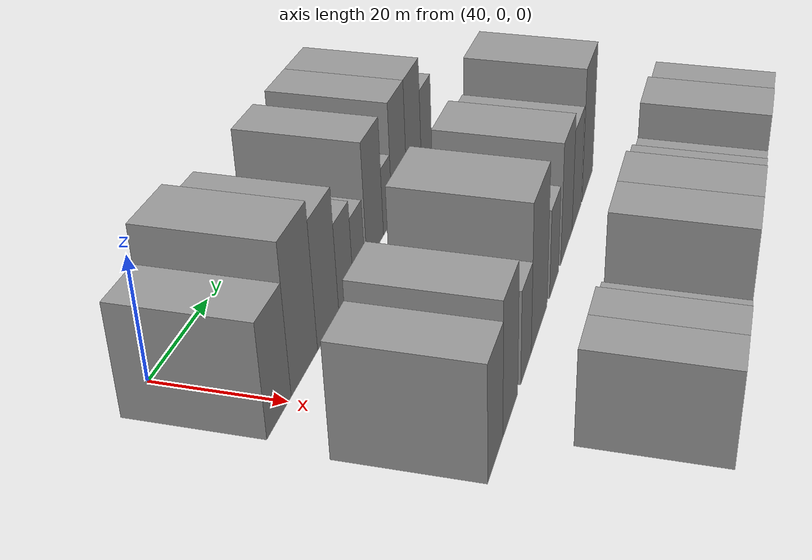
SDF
<sdf version="1.6">
 <world name="default">
  <model name="building_42">
   <static>1</static>
   <pose>50.0000 -3.3659 0 0.000000 0.000000 0.000000</pose>
   <link name="link">
    <pose>0 0 9.00 0 0 0</pose>
    <collision name="collision"><geometry><box><size>20.0000 8.8512 18.0000</size></box></geometry></collision>
    <visual name="visual">
     <cast_shadows>0</cast_shadows>
     <geometry><box><size>20.0000 8.8512 18.0000</size></box></geometry>
     <material>
      <script>
       <uri>model://grey_wall/materials/scripts</uri>
       <uri>model://grey_wall/materials/textures</uri>
       <name>vrc/grey_wall</name>
      </script>
     </material>
    </visual>
   </link>
  </model>
  <model name="building_43">
   <static>1</static>
   <pose>50.0000 6.2937 0 0.000000 0.000000 0.000000</pose>
   <link name="link">
    <pose>0 0 12.00 0 0 0</pose>
    <collision name="collision"><geometry><box><size>20.0000 10.4679 24.0000</size></box></geometry></collision>
    <visual name="visual">
     <cast_shadows>0</cast_shadows>
     <geometry><box><size>20.0000 10.4679 24.0000</size></box></geometry>
     <material>
      <script>
       <uri>model://grey_wall/materials/scripts</uri>
       <uri>model://grey_wall/materials/textures</uri>
       <name>vrc/grey_wall</name>
      </script>
     </material>
    </visual>
   </link>
  </model>
  <model name="building_44">
   <static>1</static>
   <pose>50.0000 16.1524 0 0.000000 0.000000 0.000000</pose>
   <link name="link">
    <pose>0 0 10.50 0 0 0</pose>
    <collision name="collision"><geometry><box><size>20.0000 9.2495 21.0000</size></box></geometry></collision>
    <visual name="visual">
     <cast_shadows>0</cast_shadows>
     <geometry><box><size>20.0000 9.2495 21.0000</size></box></geometry>
     <material>
      <script>
       <uri>model://grey_wall/materials/scripts</uri>
       <uri>model://grey_wall/materials/textures</uri>
       <name>vrc/grey_wall</name>
      </script>
     </material>
    </visual>
   </link>
  </model>
  <model name="building_45">
   <static>1</static>
   <pose>50.0000 24.1634 0 0.000000 0.000000 0.000000</pose>
   <link name="link">
    <pose>0 0 7.50 0 0 0</pose>
    <collision name="collision"><geometry><box><size>20.0000 6.7723 15.0000</size></box></geometry></collision>
    <visual name="visual">
     <cast_shadows>0</cast_shadows>
     <geometry><box><size>20.0000 6.7723 15.0000</size></box></geometry>
     <material>
      <script>
       <uri>model://grey_wall/materials/scripts</uri>
       <uri>model://grey_wall/materials/textures</uri>
       <name>vrc/grey_wall</name>
      </script>
     </material>
    </visual>
   </link>
  </model>
  <model name="building_46">
   <static>1</static>
   <pose>50.0000 30.4063 0 0.000000 0.000000 0.000000</pose>
   <link name="link">
    <pose>0 0 6.00 0 0 0</pose>
    <collision name="collision"><geometry><box><size>20.0000 5.7136 12.0000</size></box></geometry></collision>
    <visual name="visual">
     <cast_shadows>0</cast_shadows>
     <geometry><box><size>20.0000 5.7136 12.0000</size></box></geometry>
     <material>
      <script>
       <uri>model://grey_wall/materials/scripts</uri>
       <uri>model://grey_wall/materials/textures</uri>
       <name>vrc/grey_wall</name>
      </script>
     </material>
    </visual>
   </link>
  </model>
  <model name="building_47">
   <static>1</static>
   <pose>50.0000 38.6431 0 0.000000 0.000000 0.000000</pose>
   <link name="link">
    <pose>0 0 10.50 0 0 0</pose>
    <collision name="collision"><geometry><box><size>20.0000 8.7599 21.0000</size></box></geometry></collision>
    <visual name="visual">
     <cast_shadows>0</cast_shadows>
     <geometry><box><size>20.0000 8.7599 21.0000</size></box></geometry>
     <material>
      <script>
       <uri>model://grey_wall/materials/scripts</uri>
       <uri>model://grey_wall/materials/textures</uri>
       <name>vrc/grey_wall</name>
      </script>
     </material>
    </visual>
   </link>
  </model>
  <model name="building_48">
   <static>1</static>
   <pose>50.0000 45.4695 0 0.000000 0.000000 0.000000</pose>
   <link name="link">
    <pose>0 0 6.00 0 0 0</pose>
    <collision name="collision"><geometry><box><size>20.0000 4.8929 12.0000</size></box></geometry></collision>
    <visual name="visual">
     <cast_shadows>0</cast_shadows>
     <geometry><box><size>20.0000 4.8929 12.0000</size></box></geometry>
     <material>
      <script>
       <uri>model://grey_wall/materials/scripts</uri>
       <uri>model://grey_wall/materials/textures</uri>
       <name>vrc/grey_wall</name>
      </script>
     </material>
    </visual>
   </link>
  </model>
  <model name="building_49">
   <static>1</static>
   <pose>50.0000 52.2723 0 0.000000 0.000000 0.000000</pose>
   <link name="link">
    <pose>0 0 10.50 0 0 0</pose>
    <collision name="collision"><geometry><box><size>20.0000 8.7125 21.0000</size></box></geometry></collision>
    <visual name="visual">
     <cast_shadows>0</cast_shadows>
     <geometry><box><size>20.0000 8.7125 21.0000</size></box></geometry>
     <material>
      <script>
       <uri>model://grey_wall/materials/scripts</uri>
       <uri>model://grey_wall/materials/textures</uri>
       <name>vrc/grey_wall</name>
      </script>
     </material>
    </visual>
   </link>
  </model>
  <model name="building_50">
   <static>1</static>
   <pose>50.0000 61.1767 0 0.000000 0.000000 0.000000</pose>
   <link name="link">
    <pose>0 0 10.50 0 0 0</pose>
    <collision name="collision"><geometry><box><size>20.0000 9.0963 21.0000</size></box></geometry></collision>
    <visual name="visual">
     <cast_shadows>0</cast_shadows>
     <geometry><box><size>20.0000 9.0963 21.0000</size></box></geometry>
     <material>
      <script>
       <uri>model://grey_wall/materials/scripts</uri>
       <uri>model://grey_wall/materials/textures</uri>
       <name>vrc/grey_wall</name>
      </script>
     </material>
    </visual>
   </link>
  </model>
  <model name="building_51">
   <static>1</static>
   <pose>50.0000 69.1998 0 0.000000 0.000000 0.000000</pose>
   <link name="link">
    <pose>0 0 7.50 0 0 0</pose>
    <collision name="collision"><geometry><box><size>20.0000 6.9499 15.0000</size></box></geometry></collision>
    <visual name="visual">
     <cast_shadows>0</cast_shadows>
     <geometry><box><size>20.0000 6.9499 15.0000</size></box></geometry>
     <material>
      <script>
       <uri>model://grey_wall/materials/scripts</uri>
       <uri>model://grey_wall/materials/textures</uri>
       <name>vrc/grey_wall</name>
      </script>
     </material>
    </visual>
   </link>
  </model>
  <model name="building_118">
   <static>1</static>
   <pose>79.0000 -5.2491 0 0.000000 0.000000 0.000000</pose>
   <link name="link">
    <pose>0 0 9.00 0 0 0</pose>
    <collision name="collision"><geometry><box><size>20.0000 8.6545 18.0000</size></box></geometry></collision>
    <visual name="visual">
     <cast_shadows>0</cast_shadows>
     <geometry><box><size>20.0000 8.6545 18.0000</size></box></geometry>
     <material>
      <script>
       <uri>model://grey_wall/materials/scripts</uri>
       <uri>model://grey_wall/materials/textures</uri>
       <name>vrc/grey_wall</name>
      </script>
     </material>
    </visual>
   </link>
  </model>
  <model name="building_119">
   <static>1</static>
   <pose>79.0000 3.6770 0 0.000000 0.000000 0.000000</pose>
   <link name="link">
    <pose>0 0 10.50 0 0 0</pose>
    <collision name="collision"><geometry><box><size>20.0000 9.1977 21.0000</size></box></geometry></collision>
    <visual name="visual">
     <cast_shadows>0</cast_shadows>
     <geometry><box><size>20.0000 9.1977 21.0000</size></box></geometry>
     <material>
      <script>
       <uri>model://grey_wall/materials/scripts</uri>
       <uri>model://grey_wall/materials/textures</uri>
       <name>vrc/grey_wall</name>
      </script>
     </material>
    </visual>
   </link>
  </model>
  <model name="building_120">
   <static>1</static>
   <pose>79.0000 13.8615 0 0.000000 0.000000 0.000000</pose>
   <link name="link">
    <pose>0 0 7.50 0 0 0</pose>
    <collision name="collision"><geometry><box><size>20.0000 7.1713 15.0000</size></box></geometry></collision>
    <visual name="visual">
     <cast_shadows>0</cast_shadows>
     <geometry><box><size>20.0000 7.1713 15.0000</size></box></geometry>
     <material>
      <script>
       <uri>model://grey_wall/materials/scripts</uri>
       <uri>model://grey_wall/materials/textures</uri>
       <name>vrc/grey_wall</name>
      </script>
     </material>
    </visual>
   </link>
  </model>
  <model name="building_121">
   <static>1</static>
   <pose>79.0000 23.3644 0 0.000000 0.000000 0.000000</pose>
   <link name="link">
    <pose>0 0 12.00 0 0 0</pose>
    <collision name="collision"><geometry><box><size>20.0000 11.8346 24.0000</size></box></geometry></collision>
    <visual name="visual">
     <cast_shadows>0</cast_shadows>
     <geometry><box><size>20.0000 11.8346 24.0000</size></box></geometry>
     <material>
      <script>
       <uri>model://grey_wall/materials/scripts</uri>
       <uri>model://grey_wall/materials/textures</uri>
       <name>vrc/grey_wall</name>
      </script>
     </material>
    </visual>
   </link>
  </model>
  <model name="building_122">
   <static>1</static>
   <pose>79.0000 34.9454 0 0.000000 0.000000 0.000000</pose>
   <link name="link">
    <pose>0 0 7.50 0 0 0</pose>
    <collision name="collision"><geometry><box><size>20.0000 7.3276 15.0000</size></box></geometry></collision>
    <visual name="visual">
     <cast_shadows>0</cast_shadows>
     <geometry><box><size>20.0000 7.3276 15.0000</size></box></geometry>
     <material>
      <script>
       <uri>model://grey_wall/materials/scripts</uri>
       <uri>model://grey_wall/materials/textures</uri>
       <name>vrc/grey_wall</name>
      </script>
     </material>
    </visual>
   </link>
  </model>
  <model name="building_123">
   <static>1</static>
   <pose>79.0000 45.7378 0 0.000000 0.000000 0.000000</pose>
   <link name="link">
    <pose>0 0 10.50 0 0 0</pose>
    <collision name="collision"><geometry><box><size>20.0000 10.2572 21.0000</size></box></geometry></collision>
    <visual name="visual">
     <cast_shadows>0</cast_shadows>
     <geometry><box><size>20.0000 10.2572 21.0000</size></box></geometry>
     <material>
      <script>
       <uri>model://grey_wall/materials/scripts</uri>
       <uri>model://grey_wall/materials/textures</uri>
       <name>vrc/grey_wall</name>
      </script>
     </material>
    </visual>
   </link>
  </model>
  <model name="building_124">
   <static>1</static>
   <pose>79.0000 55.2541 0 0.000000 0.000000 0.000000</pose>
   <link name="link">
    <pose>0 0 9.00 0 0 0</pose>
    <collision name="collision"><geometry><box><size>20.0000 8.7753 18.0000</size></box></geometry></collision>
    <visual name="visual">
     <cast_shadows>0</cast_shadows>
     <geometry><box><size>20.0000 8.7753 18.0000</size></box></geometry>
     <material>
      <script>
       <uri>model://grey_wall/materials/scripts</uri>
       <uri>model://grey_wall/materials/textures</uri>
       <name>vrc/grey_wall</name>
      </script>
     </material>
    </visual>
   </link>
  </model>
  <model name="building_125">
   <static>1</static>
   <pose>79.0000 66.2986 0 0.000000 0.000000 0.000000</pose>
   <link name="link">
    <pose>0 0 12.00 0 0 0</pose>
    <collision name="collision"><geometry><box><size>20.0000 11.3137 24.0000</size></box></geometry></collision>
    <visual name="visual">
     <cast_shadows>0</cast_shadows>
     <geometry><box><size>20.0000 11.3137 24.0000</size></box></geometry>
     <material>
      <script>
       <uri>model://grey_wall/materials/scripts</uri>
       <uri>model://grey_wall/materials/textures</uri>
       <name>vrc/grey_wall</name>
      </script>
     </material>
    </visual>
   </link>
  </model>
  <model name="building_193">
   <static>1</static>
   <pose>108.0000 3.3655 0 0.000000 0.000000 0.000000</pose>
   <link name="link">
    <pose>0 0 7.50 0 0 0</pose>
    <collision name="collision"><geometry><box><size>20.0000 7.4467 15.0000</size></box></geometry></collision>
    <visual name="visual">
     <cast_shadows>0</cast_shadows>
     <geometry><box><size>20.0000 7.4467 15.0000</size></box></geometry>
     <material>
      <script>
       <uri>model://grey_wall/materials/scripts</uri>
       <uri>model://grey_wall/materials/textures</uri>
       <name>vrc/grey_wall</name>
      </script>
     </material>
    </visual>
   </link>
  </model>
  <model name="building_194">
   <static>1</static>
   <pose>108.0000 10.3203 0 0.000000 0.000000 0.000000</pose>
   <link name="link">
    <pose>0 0 7.50 0 0 0</pose>
    <collision name="collision"><geometry><box><size>20.0000 6.4629 15.0000</size></box></geometry></collision>
    <visual name="visual">
     <cast_shadows>0</cast_shadows>
     <geometry><box><size>20.0000 6.4629 15.0000</size></box></geometry>
     <material>
      <script>
       <uri>model://grey_wall/materials/scripts</uri>
       <uri>model://grey_wall/materials/textures</uri>
       <name>vrc/grey_wall</name>
      </script>
     </material>
    </visual>
   </link>
  </model>
  <model name="building_195">
   <static>1</static>
   <pose>108.0000 16.4567 0 0.000000 0.000000 0.000000</pose>
   <link name="link">
    <pose>0 0 6.00 0 0 0</pose>
    <collision name="collision"><geometry><box><size>20.0000 5.8099 12.0000</size></box></geometry></collision>
    <visual name="visual">
     <cast_shadows>0</cast_shadows>
     <geometry><box><size>20.0000 5.8099 12.0000</size></box></geometry>
     <material>
      <script>
       <uri>model://grey_wall/materials/scripts</uri>
       <uri>model://grey_wall/materials/textures</uri>
       <name>vrc/grey_wall</name>
      </script>
     </material>
    </visual>
   </link>
  </model>
  <model name="building_196">
   <static>1</static>
   <pose>108.0000 26.7716 0 0.000000 0.000000 0.000000</pose>
   <link name="link">
    <pose>0 0 10.50 0 0 0</pose>
    <collision name="collision"><geometry><box><size>20.0000 8.8200 21.0000</size></box></geometry></collision>
    <visual name="visual">
     <cast_shadows>0</cast_shadows>
     <geometry><box><size>20.0000 8.8200 21.0000</size></box></geometry>
     <material>
      <script>
       <uri>model://grey_wall/materials/scripts</uri>
       <uri>model://grey_wall/materials/textures</uri>
       <name>vrc/grey_wall</name>
      </script>
     </material>
    </visual>
   </link>
  </model>
  <model name="building_197">
   <static>1</static>
   <pose>108.0000 35.7406 0 0.000000 0.000000 0.000000</pose>
   <link name="link">
    <pose>0 0 10.50 0 0 0</pose>
    <collision name="collision"><geometry><box><size>20.0000 9.1180 21.0000</size></box></geometry></collision>
    <visual name="visual">
     <cast_shadows>0</cast_shadows>
     <geometry><box><size>20.0000 9.1180 21.0000</size></box></geometry>
     <material>
      <script>
       <uri>model://grey_wall/materials/scripts</uri>
       <uri>model://grey_wall/materials/textures</uri>
       <name>vrc/grey_wall</name>
      </script>
     </material>
    </visual>
   </link>
  </model>
  <model name="building_198">
   <static>1</static>
   <pose>108.0000 44.2844 0 0.000000 0.000000 0.000000</pose>
   <link name="link">
    <pose>0 0 9.00 0 0 0</pose>
    <collision name="collision"><geometry><box><size>20.0000 7.9695 18.0000</size></box></geometry></collision>
    <visual name="visual">
     <cast_shadows>0</cast_shadows>
     <geometry><box><size>20.0000 7.9695 18.0000</size></box></geometry>
     <material>
      <script>
       <uri>model://grey_wall/materials/scripts</uri>
       <uri>model://grey_wall/materials/textures</uri>
       <name>vrc/grey_wall</name>
      </script>
     </material>
    </visual>
   </link>
  </model>
  <model name="building_199">
   <static>1</static>
   <pose>108.0000 52.9428 0 0.000000 0.000000 0.000000</pose>
   <link name="link">
    <pose>0 0 7.50 0 0 0</pose>
    <collision name="collision"><geometry><box><size>20.0000 7.3474 15.0000</size></box></geometry></collision>
    <visual name="visual">
     <cast_shadows>0</cast_shadows>
     <geometry><box><size>20.0000 7.3474 15.0000</size></box></geometry>
     <material>
      <script>
       <uri>model://grey_wall/materials/scripts</uri>
       <uri>model://grey_wall/materials/textures</uri>
       <name>vrc/grey_wall</name>
      </script>
     </material>
    </visual>
   </link>
  </model>
  <model name="building_200">
   <static>1</static>
   <pose>108.0000 61.6209 0 0.000000 0.000000 0.000000</pose>
   <link name="link">
    <pose>0 0 10.50 0 0 0</pose>
    <collision name="collision"><geometry><box><size>20.0000 10.0089 21.0000</size></box></geometry></collision>
    <visual name="visual">
     <cast_shadows>0</cast_shadows>
     <geometry><box><size>20.0000 10.0089 21.0000</size></box></geometry>
     <material>
      <script>
       <uri>model://grey_wall/materials/scripts</uri>
       <uri>model://grey_wall/materials/textures</uri>
       <name>vrc/grey_wall</name>
      </script>
     </material>
    </visual>
   </link>
  </model>
  <model name="building_201">
   <static>1</static>
   <pose>108.0000 69.5577 0 0.000000 0.000000 0.000000</pose>
   <link name="link">
    <pose>0 0 6.00 0 0 0</pose>
    <collision name="collision"><geometry><box><size>20.0000 5.8648 12.0000</size></box></geometry></collision>
    <visual name="visual">
     <cast_shadows>0</cast_shadows>
     <geometry><box><size>20.0000 5.8648 12.0000</size></box></geometry>
     <material>
      <script>
       <uri>model://grey_wall/materials/scripts</uri>
       <uri>model://grey_wall/materials/textures</uri>
       <name>vrc/grey_wall</name>
      </script>
     </material>
    </visual>
   </link>
  </model>
  <model name="building_202">
   <static>1</static>
   <pose>108.0000 76.1098 0 0.000000 0.000000 0.000000</pose>
   <link name="link">
    <pose>0 0 9.00 0 0 0</pose>
    <collision name="collision"><geometry><box><size>20.0000 7.2394 18.0000</size></box></geometry></collision>
    <visual name="visual">
     <cast_shadows>0</cast_shadows>
     <geometry><box><size>20.0000 7.2394 18.0000</size></box></geometry>
     <material>
      <script>
       <uri>model://grey_wall/materials/scripts</uri>
       <uri>model://grey_wall/materials/textures</uri>
       <name>vrc/grey_wall</name>
      </script>
     </material>
    </visual>
   </link>
  </model>
 </world>
</sdf>
